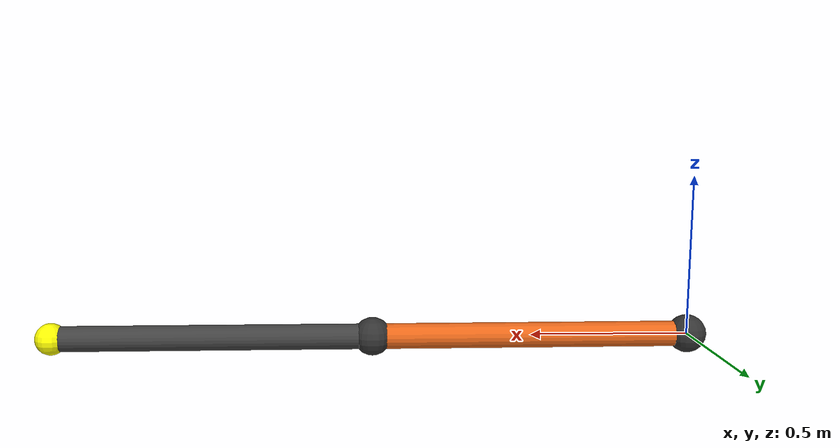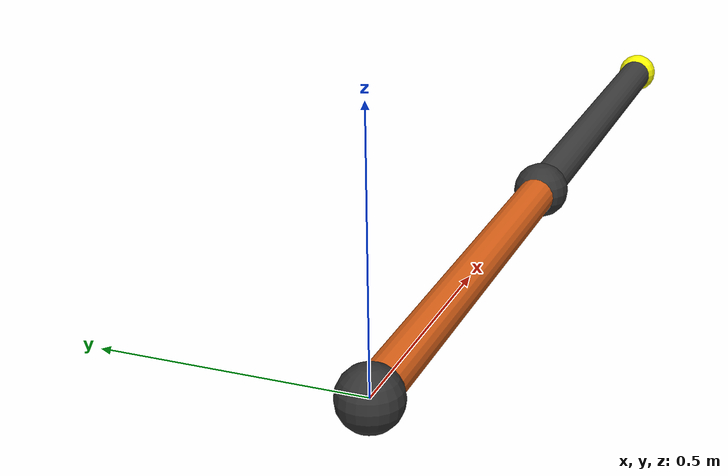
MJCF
<mujoco model="2R_planar_arm">
  <compiler angle="radian" autolimits="true"/>
  <option gravity="0 0 -9.81" timestep="0.001"/>

  <!-- ASSETS: define materials for visual appearance -->
  <asset>
    <material name="link1_mat" rgba="0.9 0.4 0.1 1" shininess="0.8" specular="0.5"/>
    <material name="link2_mat" rgba="0.25 0.25 0.25 1" shininess="0.8" specular="0.5"/>
    <material name="floor_mat" rgba="0.5 0.5 0.5 1" shininess="0.1"/>
  </asset>

  <!-- VISUAL: global rendering settings -->
  <visual>
    <headlight ambient="0.3 0.3 0.3" diffuse="0.6 0.6 0.6" specular="0.1 0.1 0.1"/>
    <rgba haze="0.15 0.25 0.35 1"/>
  </visual>

  <worldbody>

    <!-- ========== LIGHTING ========== -->
    <!-- Main overhead light -->
    <light name="main_light"
           pos="0 -2 4"
           dir="0 0.4 -1"
           diffuse="0.8 0.8 0.8"
           specular="0.3 0.3 0.3"
           castshadow="true"/>

    <!-- Fill light from the side -->
    <light name="fill_light"
           pos="3 -1 2"
           dir="-1 0.2 -0.5"
           diffuse="0.4 0.4 0.4"
           specular="0.1 0.1 0.1"
           castshadow="false"/>

    <!-- ========== FLOOR ========== -->
    <!-- Floor plane at z = -2.5 (well below arm reach of 2m) -->
    <geom name="floor"
          type="plane"
          pos="0 0 -2.5"
          size="5 5 0.1"
          material="floor_mat"
          contype="0"
          conaffinity="0"/>
    <!--
      contype="0" conaffinity="0" means NO collision with anything
      Change pos z value to move floor up/down
      Change size to make floor bigger/smaller
    -->

    <!-- ========== ROBOT ARM ========== -->
    <body name="base" pos="0 0 0">
      <joint name="joint1" type="hinge" axis="0 1 0" pos="0 0 0"
             damping="0" frictionloss="0"/>

      <!-- Thicker link 1 -->
      <geom name="link1" type="capsule" size="0.04 0.5" mass="1.0"
            pos="0.5 0 0" quat="0.707 0 0.707 0" material="link1_mat"/>

      <!-- Joint sphere at base -->
      <geom name="joint1_sphere" type="sphere" size="0.06" pos="0 0 0"
            mass="0" rgba="0.2 0.2 0.2 1"/>

      <body name="link2_body" pos="1 0 0">
        <joint name="joint2" type="hinge" axis="0 1 0" pos="0 0 0"
               damping="0" frictionloss="0"/>

        <!-- Joint sphere at elbow -->
        <geom name="joint2_sphere" type="sphere" size="0.06" pos="0 0 0"
              mass="0" rgba="0.2 0.2 0.2 1"/>

        <!-- Thicker link 2 -->
        <geom name="link2" type="cylinder" size="0.04 0.5" mass="1.0"
              pos="0.5 0 0" quat="0.707 0 0.707 0" material="link2_mat"/>

        <!-- End-effector sphere -->
        <geom name="tip_sphere" type="sphere" size="0.05" pos="1 0 0"
              mass="0" rgba="1 1 0 1"/>

        <site name="tip" pos="1 0 0" size="0.03"/>
      </body>
    </body>

  </worldbody>
</mujoco>
